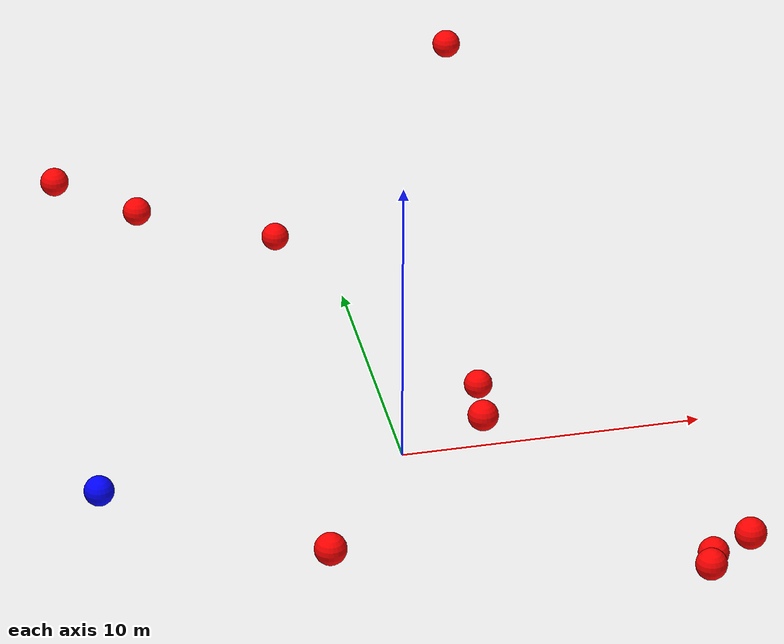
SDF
<?xml version="1.0" ?>
<sdf version="1.8">
    <world name="3d_world">
        <physics name="1ms" type="ode">
            <max_step_size>0.001</max_step_size>
            <real_time_factor>1.0</real_time_factor>
            <real_time_update_rate>1000.0</real_time_update_rate>
        </physics>
        <gravity>0 0 0</gravity>

        <plugin
            filename="gz-sim-physics-system"
            name="gz::sim::v8::systems::Physics">
        </plugin>
        <plugin
            filename="libignition-gazebo-user-commands-system.so"
            name="ignition::gazebo::systems::UserCommands">
        </plugin>
        <plugin
            filename="gz-sim-scene-broadcaster-system"
            name="gz::sim::systems::SceneBroadcaster">
        </plugin>
        <plugin
            filename="gz-sim-sensors-system"
            name="gz::sim::systems::Sensors">
            <render_engine>ogre2</render_engine>
        </plugin>

        <light type="directional" name="sun">
            <cast_shadows>true</cast_shadows>
            <pose>0 0 10 0 0 0</pose>
            <diffuse>0.8 0.8 0.8 1</diffuse>
            <specular>0.2 0.2 0.2 1</specular>
            <attenuation>
                <range>1000</range>
                <constant>0.9</constant>
                <linear>0.01</linear>
                <quadratic>0.001</quadratic>
            </attenuation>
            <direction>-0.5 0.1 -0.9</direction>
        </light>

        <!-- AGENTE -->
        <model name='agente' canonical_link='chassis'>
            <pose relative_to='world'>-10.0 0 0.0 0 0 0</pose>
            <link name='chassis'>
                <pose relative_to='__model__'>0.0 0 0.0 0 0 0</pose>
                <inertial>
                    <mass>1.14395</mass>
                    <inertia>
                        <ixx>0.095329</ixx>
                        <ixy>0</ixy>
                        <ixz>0</ixz>
                        <iyy>0.381317</iyy>
                        <iyz>0</iyz>
                        <izz>0.476646</izz>
                    </inertia>
                </inertial>
                <visual name='visual'>
                    <geometry>
                        <sphere>
                            <radius>0.5</radius>
                        </sphere>
                    </geometry>
                    <material>
                        <ambient>0.0 0.0 1.0 1</ambient>
                        <diffuse>0.0 0.0 1.0 1</diffuse>
                        <specular>0.0 0.0 1.0 1</specular>
                    </material>
                </visual>
                <collision name='collision'>
                    <geometry>
                        <sphere>
                            <radius>0.5</radius>
                        </sphere>
                    </geometry>
                </collision>
                <enable_gravity>false</enable_gravity>
            </link>

            <link name='lidar_link'>
                <pose relative_to='chassis'>0.0 0 0.1 0 0 0</pose>
                <inertial>
                    <mass>0.1</mass>
                    <inertia>
                        <ixx>0.000166667</ixx>
                        <iyy>0.000166667</iyy>
                        <izz>0.000166667</izz>
                    </inertia>
                </inertial>
                <collision name='collision'>
                    <geometry>
                        <cylinder>
                            <radius>0.05</radius>
                            <length>0.1</length>
                        </cylinder>
                    </geometry>
                </collision>
                <visual name='visual'>
                    <geometry>
                        <cylinder>
                            <radius>0.05</radius>
                            <length>0.1</length>
                        </cylinder>
                    </geometry>
                    <material>
                        <ambient>0.0 1.0 0.0 1</ambient>
                        <diffuse>0.0 1.0 0.0 1</diffuse>
                        <specular>0.0 1.0 0.0 1</specular>
                    </material>
                </visual>
                <sensor name="lidar" type="gpu_lidar">
                    <topic>scan</topic>
                    <update_rate>10</update_rate>
                    <lidar>
                        <scan>
                            <horizontal>
                                <samples>5000</samples>
                                <resolution>1</resolution>
                                <min_angle>-3.14159</min_angle>
                                <max_angle>3.14159</max_angle>
                            </horizontal>
                        </scan>
                        <range>
                            <min>0.1</min>
                            <max>10.0</max>
                            <resolution>0.01</resolution>
                        </range>
                    </lidar>
                    <visualize>true</visualize>
                    <always_on>true</always_on>
                    <update_rate>10</update_rate>
                    <pose_frame>lidar</pose_frame>
                </sensor>
                <enable_gravity>false</enable_gravity>
            </link>

            <joint name="lidar_joint" type="fixed">
                <parent>chassis</parent>
                <child>lidar_link</child>
            </joint>

            <plugin
                filename="ignition-gazebo-joint-state-publisher-system"
                name="ignition::gazebo::systems::JointStatePublisher">
            </plugin>
            <plugin
                filename="ignition-gazebo-odometry-publisher-system"
                name="ignition::gazebo::systems::OdometryPublisher">
                <dimensions>3</dimensions>
            </plugin>
            <plugin
                filename="ignition-gazebo-velocity-control-system"
                name="ignition::gazebo::systems::VelocityControl">
                <initial_linear>0.0 0 0</initial_linear>
                <initial_angular>0 0 0.0</initial_angular>
            </plugin>
            <plugin
                filename="libignition-gazebo-pose-publisher-system.so"
                name="ignition::gazebo::systems::PosePublisher">
                <topic>/agente/pose</topic>
                <frame_id>agente</frame_id>
                <update_rate>30</update_rate>
            </plugin>
        </model>

        <!-- OBSTACLE 1 -->
        <model name='obstacle_1' canonical_link='obstacle'>
            <static>false</static>
            <pose relative_to='world'>-9.08 16.50 1.95 0 0 0</pose>
            <link name='obstacle'>
                <pose relative_to='__model__'>0.0 0 0.0 0 0 0</pose>
                <visual name='visual'>
                    <geometry>
                        <sphere>
                            <radius>0.50</radius>
                        </sphere>
                    </geometry>
                    <material>
                        <ambient>1.0 0.0 0.0 1</ambient>
                        <diffuse>1.0 0.0 0.0 1</diffuse>
                        <specular>1.0 0.0 0.0 1</specular>
                    </material>
                </visual>
                <collision name='collision'>
                    <geometry>
                        <sphere>
                            <radius>0.50</radius>
                        </sphere>
                    </geometry>
                </collision>
                <enable_gravity>false</enable_gravity>
            </link>

            <plugin
                filename="ignition-gazebo-velocity-control-system"
                name="ignition::gazebo::systems::VelocityControl">
                <initial_linear>0.96 -1.74 -0.21</initial_linear>
                <initial_angular>0 0 0</initial_angular>
            </plugin>

            <plugin
                filename="ignition-gazebo-odometry-publisher-system"
                name="ignition::gazebo::systems::OdometryPublisher">
                <dimensions>3</dimensions>
            </plugin>
        </model>

        <!-- OBSTACLE 2 -->
        <model name='obstacle_2' canonical_link='obstacle'>
            <static>false</static>
            <pose relative_to='world'>7.31 -10.70 2.08 0 0 0</pose>
            <link name='obstacle'>
                <pose relative_to='__model__'>0.0 0 0.0 0 0 0</pose>
                <visual name='visual'>
                    <geometry>
                        <sphere>
                            <radius>0.50</radius>
                        </sphere>
                    </geometry>
                    <material>
                        <ambient>1.0 0.0 0.0 1</ambient>
                        <diffuse>1.0 0.0 0.0 1</diffuse>
                        <specular>1.0 0.0 0.0 1</specular>
                    </material>
                </visual>
                <collision name='collision'>
                    <geometry>
                        <sphere>
                            <radius>0.50</radius>
                        </sphere>
                    </geometry>
                </collision>
                <enable_gravity>false</enable_gravity>
            </link>

            <plugin
                filename="ignition-gazebo-velocity-control-system"
                name="ignition::gazebo::systems::VelocityControl">
                <initial_linear>-1.38 1.42 -0.28</initial_linear>
                <initial_angular>0 0 0</initial_angular>
            </plugin>

            <plugin
                filename="ignition-gazebo-odometry-publisher-system"
                name="ignition::gazebo::systems::OdometryPublisher">
                <dimensions>3</dimensions>
            </plugin>
        </model>

        <!-- OBSTACLE 3 -->
        <model name='obstacle_3' canonical_link='obstacle'>
            <static>false</static>
            <pose relative_to='world'>-4.50 -10.72 4.41 0 0 0</pose>
            <link name='obstacle'>
                <pose relative_to='__model__'>0.0 0 0.0 0 0 0</pose>
                <visual name='visual'>
                    <geometry>
                        <sphere>
                            <radius>0.50</radius>
                        </sphere>
                    </geometry>
                    <material>
                        <ambient>1.0 0.0 0.0 1</ambient>
                        <diffuse>1.0 0.0 0.0 1</diffuse>
                        <specular>1.0 0.0 0.0 1</specular>
                    </material>
                </visual>
                <collision name='collision'>
                    <geometry>
                        <sphere>
                            <radius>0.50</radius>
                        </sphere>
                    </geometry>
                </collision>
                <enable_gravity>false</enable_gravity>
            </link>

            <plugin
                filename="ignition-gazebo-velocity-control-system"
                name="ignition::gazebo::systems::VelocityControl">
                <initial_linear>0.86 1.67 -0.69</initial_linear>
                <initial_angular>0 0 0</initial_angular>
            </plugin>

            <plugin
                filename="ignition-gazebo-odometry-publisher-system"
                name="ignition::gazebo::systems::OdometryPublisher">
                <dimensions>3</dimensions>
            </plugin>
        </model>

        <!-- OBSTACLE 4 -->
        <model name='obstacle_4' canonical_link='obstacle'>
            <static>false</static>
            <pose relative_to='world'>-0.85 18.33 -2.41 0 0 0</pose>
            <link name='obstacle'>
                <pose relative_to='__model__'>0.0 0 0.0 0 0 0</pose>
                <visual name='visual'>
                    <geometry>
                        <sphere>
                            <radius>0.50</radius>
                        </sphere>
                    </geometry>
                    <material>
                        <ambient>1.0 0.0 0.0 1</ambient>
                        <diffuse>1.0 0.0 0.0 1</diffuse>
                        <specular>1.0 0.0 0.0 1</specular>
                    </material>
                </visual>
                <collision name='collision'>
                    <geometry>
                        <sphere>
                            <radius>0.50</radius>
                        </sphere>
                    </geometry>
                </collision>
                <enable_gravity>false</enable_gravity>
            </link>

            <plugin
                filename="ignition-gazebo-velocity-control-system"
                name="ignition::gazebo::systems::VelocityControl">
                <initial_linear>0.56 -1.90 0.25</initial_linear>
                <initial_angular>0 0 0</initial_angular>
            </plugin>

            <plugin
                filename="ignition-gazebo-odometry-publisher-system"
                name="ignition::gazebo::systems::OdometryPublisher">
                <dimensions>3</dimensions>
            </plugin>
        </model>

        <!-- OBSTACLE 5 -->
        <model name='obstacle_5' canonical_link='obstacle'>
            <static>false</static>
            <pose relative_to='world'>5.91 19.98 4.00 0 0 0</pose>
            <link name='obstacle'>
                <pose relative_to='__model__'>0.0 0 0.0 0 0 0</pose>
                <visual name='visual'>
                    <geometry>
                        <sphere>
                            <radius>0.50</radius>
                        </sphere>
                    </geometry>
                    <material>
                        <ambient>1.0 0.0 0.0 1</ambient>
                        <diffuse>1.0 0.0 0.0 1</diffuse>
                        <specular>1.0 0.0 0.0 1</specular>
                    </material>
                </visual>
                <collision name='collision'>
                    <geometry>
                        <sphere>
                            <radius>0.50</radius>
                        </sphere>
                    </geometry>
                </collision>
                <enable_gravity>false</enable_gravity>
            </link>

            <plugin
                filename="ignition-gazebo-velocity-control-system"
                name="ignition::gazebo::systems::VelocityControl">
                <initial_linear>-0.91 -1.75 -0.35</initial_linear>
                <initial_angular>0 0 0</initial_angular>
            </plugin>

            <plugin
                filename="ignition-gazebo-odometry-publisher-system"
                name="ignition::gazebo::systems::OdometryPublisher">
                <dimensions>3</dimensions>
            </plugin>
        </model>

        <!-- OBSTACLE 6 -->
        <model name='obstacle_6' canonical_link='obstacle'>
            <static>false</static>
            <pose relative_to='world'>8.62 -10.35 2.80 0 0 0</pose>
            <link name='obstacle'>
                <pose relative_to='__model__'>0.0 0 0.0 0 0 0</pose>
                <visual name='visual'>
                    <geometry>
                        <sphere>
                            <radius>0.50</radius>
                        </sphere>
                    </geometry>
                    <material>
                        <ambient>1.0 0.0 0.0 1</ambient>
                        <diffuse>1.0 0.0 0.0 1</diffuse>
                        <specular>1.0 0.0 0.0 1</specular>
                    </material>
                </visual>
                <collision name='collision'>
                    <geometry>
                        <sphere>
                            <radius>0.50</radius>
                        </sphere>
                    </geometry>
                </collision>
                <enable_gravity>false</enable_gravity>
            </link>

            <plugin
                filename="ignition-gazebo-velocity-control-system"
                name="ignition::gazebo::systems::VelocityControl">
                <initial_linear>-1.40 1.38 -0.37</initial_linear>
                <initial_angular>0 0 0</initial_angular>
            </plugin>

            <plugin
                filename="ignition-gazebo-odometry-publisher-system"
                name="ignition::gazebo::systems::OdometryPublisher">
                <dimensions>3</dimensions>
            </plugin>
        </model>

        <!-- OBSTACLE 7 -->
        <model name='obstacle_7' canonical_link='obstacle'>
            <static>false</static>
            <pose relative_to='world'>8.39 -7.47 0.09 0 0 0</pose>
            <link name='obstacle'>
                <pose relative_to='__model__'>0.0 0 0.0 0 0 0</pose>
                <visual name='visual'>
                    <geometry>
                        <sphere>
                            <radius>0.50</radius>
                        </sphere>
                    </geometry>
                    <material>
                        <ambient>1.0 0.0 0.0 1</ambient>
                        <diffuse>1.0 0.0 0.0 1</diffuse>
                        <specular>1.0 0.0 0.0 1</specular>
                    </material>
                </visual>
                <collision name='collision'>
                    <geometry>
                        <sphere>
                            <radius>0.50</radius>
                        </sphere>
                    </geometry>
                </collision>
                <enable_gravity>false</enable_gravity>
            </link>

            <plugin
                filename="ignition-gazebo-velocity-control-system"
                name="ignition::gazebo::systems::VelocityControl">
                <initial_linear>-0.59 1.26 -0.02</initial_linear>
                <initial_angular>0 0 0</initial_angular>
            </plugin>

            <plugin
                filename="ignition-gazebo-odometry-publisher-system"
                name="ignition::gazebo::systems::OdometryPublisher">
                <dimensions>3</dimensions>
            </plugin>
        </model>

        <!-- OBSTACLE 8 -->
        <model name='obstacle_8' canonical_link='obstacle'>
            <static>false</static>
            <pose relative_to='world'>4.47 8.21 -3.11 0 0 0</pose>
            <link name='obstacle'>
                <pose relative_to='__model__'>0.0 0 0.0 0 0 0</pose>
                <visual name='visual'>
                    <geometry>
                        <sphere>
                            <radius>0.50</radius>
                        </sphere>
                    </geometry>
                    <material>
                        <ambient>1.0 0.0 0.0 1</ambient>
                        <diffuse>1.0 0.0 0.0 1</diffuse>
                        <specular>1.0 0.0 0.0 1</specular>
                    </material>
                </visual>
                <collision name='collision'>
                    <geometry>
                        <sphere>
                            <radius>0.50</radius>
                        </sphere>
                    </geometry>
                </collision>
                <enable_gravity>false</enable_gravity>
            </link>

            <plugin
                filename="ignition-gazebo-velocity-control-system"
                name="ignition::gazebo::systems::VelocityControl">
                <initial_linear>-0.01 -1.42 0.54</initial_linear>
                <initial_angular>0 0 0</initial_angular>
            </plugin>

            <plugin
                filename="ignition-gazebo-odometry-publisher-system"
                name="ignition::gazebo::systems::OdometryPublisher">
                <dimensions>3</dimensions>
            </plugin>
        </model>

        <!-- OBSTACLE 9 -->
        <model name='obstacle_9' canonical_link='obstacle'>
            <static>false</static>
            <pose relative_to='world'>-6.32 15.47 1.00 0 0 0</pose>
            <link name='obstacle'>
                <pose relative_to='__model__'>0.0 0 0.0 0 0 0</pose>
                <visual name='visual'>
                    <geometry>
                        <sphere>
                            <radius>0.50</radius>
                        </sphere>
                    </geometry>
                    <material>
                        <ambient>1.0 0.0 0.0 1</ambient>
                        <diffuse>1.0 0.0 0.0 1</diffuse>
                        <specular>1.0 0.0 0.0 1</specular>
                    </material>
                </visual>
                <collision name='collision'>
                    <geometry>
                        <sphere>
                            <radius>0.50</radius>
                        </sphere>
                    </geometry>
                </collision>
                <enable_gravity>false</enable_gravity>
            </link>

            <plugin
                filename="ignition-gazebo-velocity-control-system"
                name="ignition::gazebo::systems::VelocityControl">
                <initial_linear>0.61 -1.90 -0.12</initial_linear>
                <initial_angular>0 0 0</initial_angular>
            </plugin>

            <plugin
                filename="ignition-gazebo-odometry-publisher-system"
                name="ignition::gazebo::systems::OdometryPublisher">
                <dimensions>3</dimensions>
            </plugin>
        </model>

        <!-- OBSTACLE 10 -->
        <model name='obstacle_10' canonical_link='obstacle'>
            <static>false</static>
            <pose relative_to='world'>2.09 -2.43 2.84 0 0 0</pose>
            <link name='obstacle'>
                <pose relative_to='__model__'>0.0 0 0.0 0 0 0</pose>
                <visual name='visual'>
                    <geometry>
                        <sphere>
                            <radius>0.50</radius>
                        </sphere>
                    </geometry>
                    <material>
                        <ambient>1.0 0.0 0.0 1</ambient>
                        <diffuse>1.0 0.0 0.0 1</diffuse>
                        <specular>1.0 0.0 0.0 1</specular>
                    </material>
                </visual>
                <collision name='collision'>
                    <geometry>
                        <sphere>
                            <radius>0.50</radius>
                        </sphere>
                    </geometry>
                </collision>
                <enable_gravity>false</enable_gravity>
            </link>

            <plugin
                filename="ignition-gazebo-velocity-control-system"
                name="ignition::gazebo::systems::VelocityControl">
                <initial_linear>-1.63 0.76 -0.88</initial_linear>
                <initial_angular>0 0 0</initial_angular>
            </plugin>

            <plugin
                filename="ignition-gazebo-odometry-publisher-system"
                name="ignition::gazebo::systems::OdometryPublisher">
                <dimensions>3</dimensions>
            </plugin>
        </model>

    </world>
</sdf>
